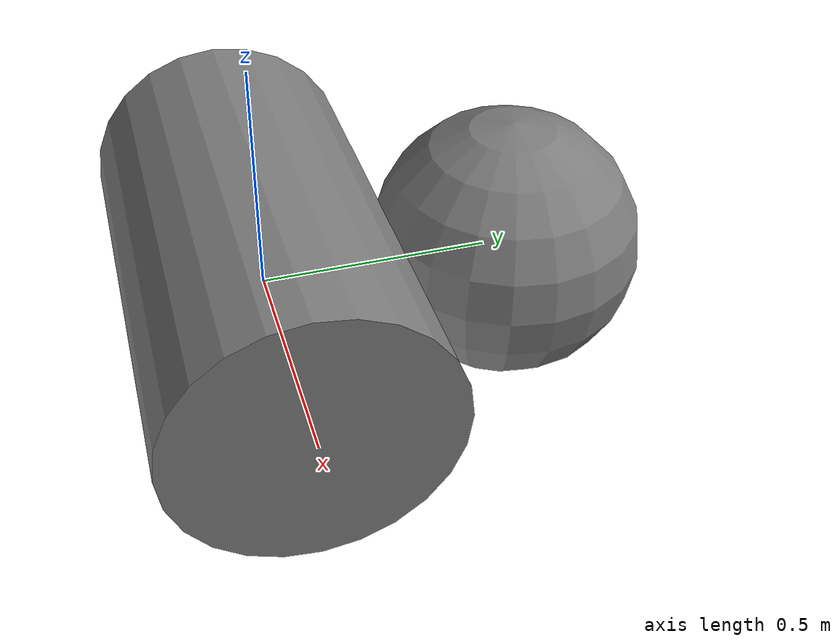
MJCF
<mujoco model="cyl_sph_perp">
            <option gravity="0 0 0" timestep="0.001"/>
            <worldbody>
                <body name="cyl" pos="0 0 0" euler="0 90 0">
                    <joint type="free"/>
                    <geom type="cylinder" size="0.3 0.5"/>
                </body>
                <body name="sph" pos="0 0.55 0">
                    <joint type="free"/>
                    <geom type="sphere" size="0.3"/>
                </body>
            </worldbody>
        </mujoco>
